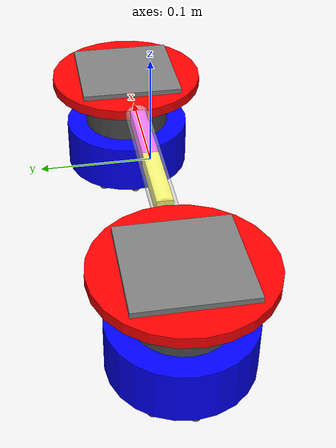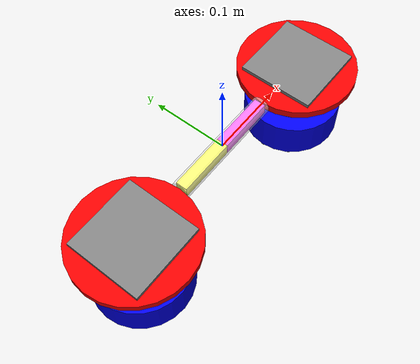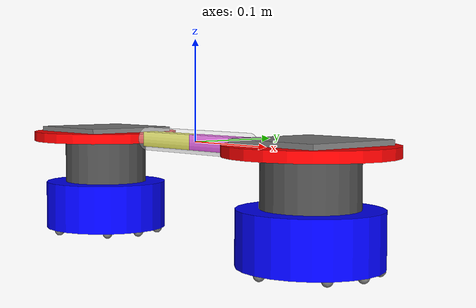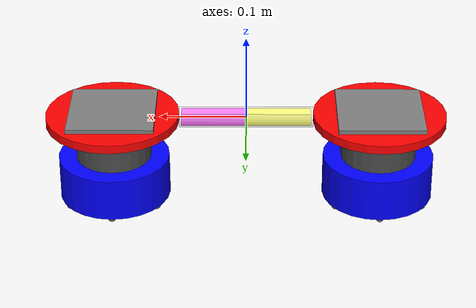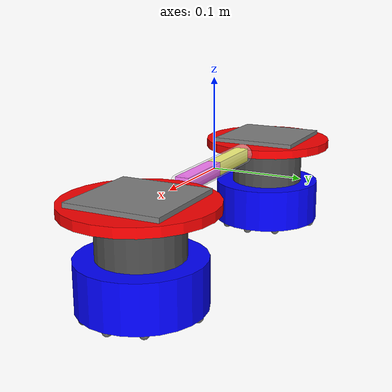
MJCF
<!-- The Lappa robot -->
<mujoco model="Lappa">
	<worldbody>
        <body name="root">
            <joint name="root_joint" type="free" pos="0 0 0" />
			<geom name="root" type="cylinder" fromto="-.075 0 0 .075 0 0" size=".005" mass=".0001" rgba=".5 .5 .5 .25" />
			<body name="connector" pos="0 0 0">
				<geom name="connector" type="cylinder" size=".012 .0775" euler="0 90 0" rgba="1 1 1 .5" mass="0.01" />
                <body name="a_connector" pos="-.0375 0 0">
                    <geom name="a_connector" type="box" size=".0075 .0075 .0375" euler="0 90 0" rgba="1 1 0 1" mass="0.01" />
                </body>
				<body name="b_connector" pos=".0375 0 0">
                    <geom name="b_connector" type="box" size=".0075 .0075 .0375" euler="0 90 0" rgba="1 0 1 1" mass="0.01" />
                </body>
			</body>
			<body name="a_module" pos=".155 0 0" euler="0 0 180">
				<geom name="a_house" type="cylinder" size=".0775 .005" rgba="1 0 0 1" mass="0.2" />
				<geom name="a_lock" type="box" size=".05 .05 .005" pos="0 0 .005" mass="0" />
				<joint name="a_h2" type="hinge" axis="0 1 0" pos=".0775 0 0" limited="true" range="-45 45" />
                <joint name="h3" type="hinge"  pos=".155 0 0" axis="1 0 0" limited="true" range="-90 90" stiffness=".8" damping="2" />
                <body name="a_chamber" pos="0 0 0">
					<joint name="a_h1" type="hinge" axis="0 0 1" />
                    <geom name="a_gear" type="cylinder" fromto="0 0 0 0 0 -.05" size=".044" rgba=".3 .3 .3 1" mass="0.05" />
					<geom name="a_chamber" type="cylinder" fromto="0 0 -.05 0 0 -.1" size=".065" rgba="0 0 1 1" mass="0.35" friction="2" />
                    <site name="a_propeller" pos="0 0 -.05" />
                    <!-- Surface sensors -->
                    <site name="a_chamber_0" pos="0 0 -.10" euler="0 180 0" />
                    <site name="a_chamber_1" pos=".06 0 -.10" euler="0 180 0" />
                    <site name="a_chamber_2" pos="-.06 0 -.10" euler="0 180 0" />
                    <site name="a_chamber_3" pos="0 .06 -.10" euler="0 180 0" />
                    <site name="a_chamber_4" pos="0 -.06 -.10" euler="0 180 0" />
                    <site name="a_chamber_5" pos=".05 .0325 -.10" euler="0 180 0" />
                    <site name="a_chamber_6" pos=".05 -.0325 -.10" euler="0 180 0" />
                    <site name="a_chamber_7" pos="-.05 .0325 -.10" euler="0 180 0" />
                    <site name="a_chamber_8" pos="-.05 -.0325 -.10" euler="0 180 0" />
				</body>
			</body>
			<body name="b_module" pos="-.155 0 0">
				<geom name="b_house" type="cylinder" size=".0775 .005" rgba="1 0 0 1" mass="0.2" />
				<geom name="b_lock" type="box" size=".05 .05 .005" pos="0 0 .005" mass="0" />
				<joint name="b_h2" type="hinge" axis="0 1 0" pos=".0775 0 0" limited="true" range="-45 45" />
				<body name="b_chamber" pos="0 0 0">
					<joint name="b_h1" type="hinge" axis="0 0 1" />
					<geom name="b_gear" type="cylinder" fromto="0 0 0 0 0 -.05" size=".044" rgba=".3 .3 .3 1" mass="0.05" />
                    <geom name="b_chamber" type="cylinder" fromto="0 0 -.05 0 0 -.1" size=".065" rgba="0 0 1 1" mass="0.35" />
                    <site name="b_propeller" pos="0 0 -.05" />
                    <!-- Surface sensors -->
                    <site name="b_chamber_0" pos="0 0 -.10" euler="0 180 0" />
                    <site name="b_chamber_1" pos=".06 0 -.10" euler="0 180 0" />
                    <site name="b_chamber_2" pos="-.06 0 -.10" euler="0 180 0" />
                    <site name="b_chamber_3" pos="0 .06 -.10" euler="0 180 0" />
                    <site name="b_chamber_4" pos="0 -.06 -.10" euler="0 180 0" />
                    <site name="b_chamber_5" pos=".05 .0325 -.10" euler="0 180 0" />
                    <site name="b_chamber_6" pos=".05 -.0325 -.10" euler="0 180 0" />
                    <site name="b_chamber_7" pos="-.05 .0325 -.10" euler="0 180 0" />
                    <site name="b_chamber_8" pos="-.05 -.0325 -.10" euler="0 180 0" />
				</body>
			</body>
		</body>
	</worldbody>
	<equality>
	</equality>
    <sensor>
        <!-- A Module Surface Sensors -->
        <rangefinder name="a_chamber_0" site="a_chamber_0" cutoff=".05" />
        <rangefinder name="a_chamber_1" site="a_chamber_1" cutoff=".05" />
        <rangefinder name="a_chamber_2" site="a_chamber_2" cutoff=".05" />
        <rangefinder name="a_chamber_3" site="a_chamber_3" cutoff=".05" />
        <rangefinder name="a_chamber_4" site="a_chamber_4" cutoff=".05" />
        <rangefinder name="a_chamber_5" site="a_chamber_5" cutoff=".05" />
        <rangefinder name="a_chamber_6" site="a_chamber_6" cutoff=".05" />
        <rangefinder name="a_chamber_7" site="a_chamber_7" cutoff=".05" />
        <rangefinder name="a_chamber_8" site="a_chamber_8" cutoff=".05" />
        <!-- B Module Surface Sensors -->
        <rangefinder name="b_module_0" site="b_chamber_0" cutoff=".05" />
        <rangefinder name="b_module_1" site="b_chamber_1" cutoff=".05" />
        <rangefinder name="b_module_2" site="b_chamber_2" cutoff=".05" />
        <rangefinder name="b_module_3" site="b_chamber_3" cutoff=".05" />
        <rangefinder name="b_module_4" site="b_chamber_4" cutoff=".05" />
        <rangefinder name="b_module_5" site="b_chamber_5" cutoff=".05" />
        <rangefinder name="b_module_6" site="b_chamber_6" cutoff=".05" />
        <rangefinder name="b_module_7" site="b_chamber_7" cutoff=".05" />
        <rangefinder name="b_module_8" site="b_chamber_8" cutoff=".05" />
    </sensor>
    <actuator>
        <motor name="a_thrust" site="a_propeller" ctrllimited="true" ctrlrange="-1. 1." gear="0 0 10"  />
        <motor name="b_thrust" site="b_propeller" ctrllimited="true" ctrlrange="-1. 1." gear="0 0 10"  />
        <motor name="a_h1" joint="a_h1" gear="5" />
        <motor name="b_h1" joint="b_h1" gear="5" />
	</actuator>
</mujoco>
